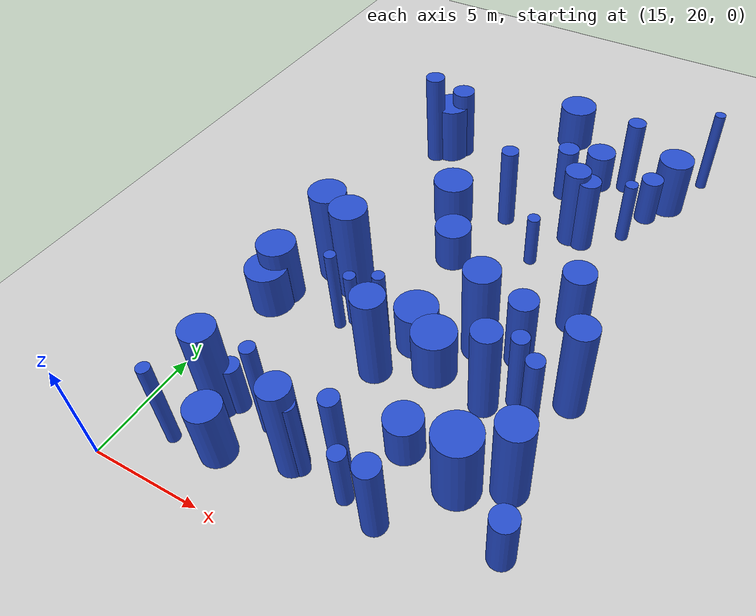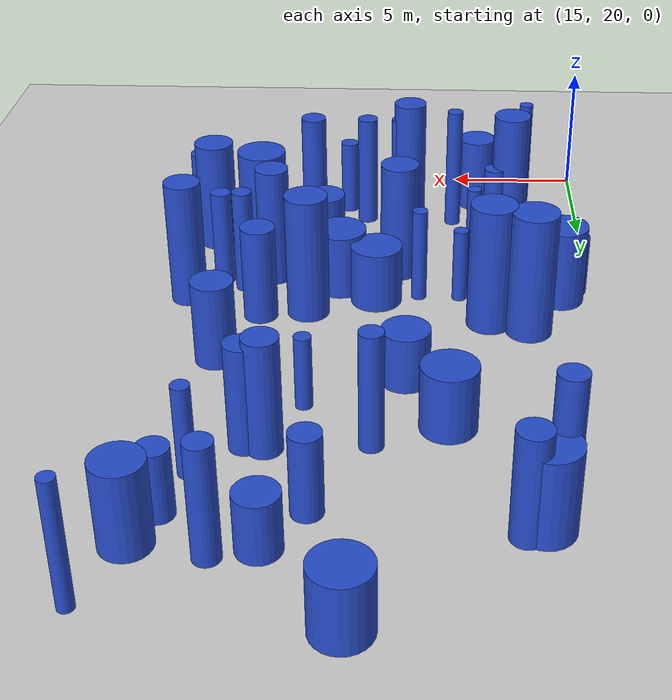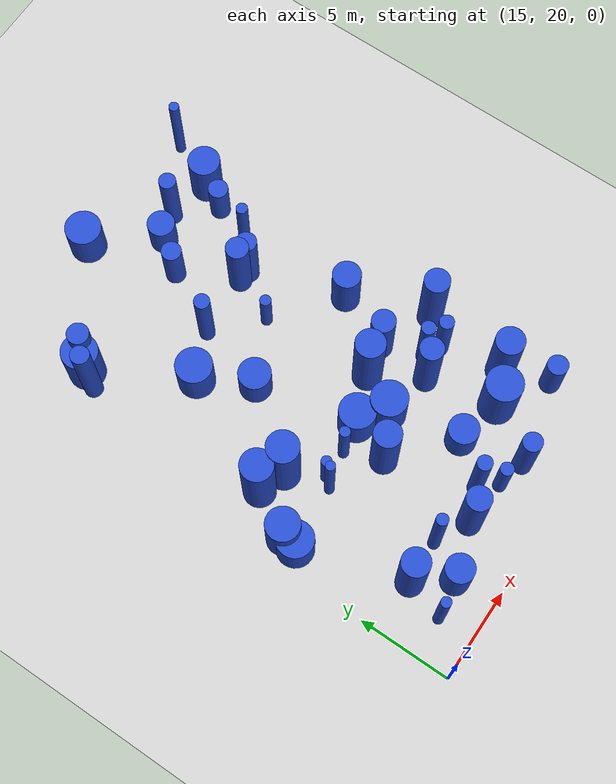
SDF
<sdf version="1.6">
 <world name="default">
  <model name="ground_plane">
   <static>1</static>
   <link name="link">
    <collision name="collision">
     <geometry><plane><normal>0 0 1</normal><size>100 100</size></plane></geometry>
     <surface><friction><ode><mu>100</mu><mu2>50</mu2></ode></friction></surface>
    </collision>
    <visual name="visual">
     <cast_shadows>0</cast_shadows>
     <geometry><plane><normal>0 0 1</normal><size>100 100</size></plane></geometry>
     <material>
      <script><uri>file://media/materials/scripts/gazebo.material</uri><name>Gazebo/Grey</name></script>
     </material>
    </visual>
   </link>
  </model>
  <model name="0">
   <static>0</static>
   <link name="link">
    <inertial>
     <mass>2</mass>
     <inertia><ixx>1.43734</ixx><ixy>0</ixy><ixz>0</ixz><iyy>1.43734</iyy><iyz>0</iyz><izz>0.944565</izz></inertia>
    </inertial>
    <collision name="collision">
     <geometry><cylinder><length>2.40632</length><radius>0.971888</radius></cylinder></geometry>
     <surface><contact><collide_without_contact>1</collide_without_contact></contact></surface>
    </collision>
    <visual name="visual">
     <geometry><cylinder><length>2.40632</length><radius>0.971888</radius></cylinder></geometry>
     <material>
      <script><uri>file://media/materials/scripts/gazebo.material</uri><name>Gazebo/Blue</name></script>
     </material>
    </visual>
    <gravity>0</gravity>
   </link>
   <pose>20.5384 38.7875 1.20316 0 -0 0</pose>
  </model>
  <model name="4">
   <static>0</static>
   <link name="link">
    <inertial>
     <mass>2</mass>
     <inertia>
      <ixx>2.26503</ixx>
      <ixy>0</ixy>
      <ixz>0</ixz>
      <iyy>2.26503</iyy>
      <iyz>0</iyz>
      <izz>0.0810352</izz>
     </inertia>
    </inertial>
    <collision name="collision">
     <geometry><cylinder><length>3.65337</length><radius>0.284667</radius></cylinder></geometry>
     <surface><contact><collide_without_contact>1</collide_without_contact></contact></surface>
    </collision>
    <visual name="visual">
     <geometry><cylinder><length>3.65337</length><radius>0.284667</radius></cylinder></geometry>
     <material>
      <script><uri>file://media/materials/scripts/gazebo.material</uri><name>Gazebo/Blue</name></script>
     </material>
    </visual>
    <gravity>0</gravity>
   </link>
   <pose>21.5602 30.4174 1.82668 0 -0 0</pose>
  </model>
  <model name="16">
   <static>0</static>
   <link name="link">
    <inertial>
     <mass>2</mass>
     <inertia><ixx>1.32738</ixx><ixy>0</ixy><ixz>0</ixz><iyy>1.32738</iyy><iyz>0</iyz><izz>0.945054</izz></inertia>
    </inertial>
    <collision name="collision">
     <geometry><cylinder><length>2.26476</length><radius>0.972139</radius></cylinder></geometry>
     <surface><contact><collide_without_contact>1</collide_without_contact></contact></surface>
    </collision>
    <visual name="visual">
     <geometry><cylinder><length>2.26476</length><radius>0.972139</radius></cylinder></geometry>
     <material>
      <script><uri>file://media/materials/scripts/gazebo.material</uri><name>Gazebo/Blue</name></script>
     </material>
    </visual>
    <gravity>0</gravity>
   </link>
   <pose>16.1139 29.627 1.13238 0 -0 0</pose>
  </model>
  <model name="21">
   <static>0</static>
   <link name="link">
    <inertial>
     <mass>2</mass>
     <inertia><ixx>1.37016</ixx><ixy>0</ixy><ixz>0</ixz><iyy>1.37016</iyy><iyz>0</iyz><izz>0.921566</izz></inertia>
    </inertial>
    <collision name="collision">
     <geometry><cylinder><length>2.33587</length><radius>0.959982</radius></cylinder></geometry>
     <surface><contact><collide_without_contact>1</collide_without_contact></contact></surface>
    </collision>
    <visual name="visual">
     <geometry><cylinder><length>2.33587</length><radius>0.959982</radius></cylinder></geometry>
     <material>
      <script><uri>file://media/materials/scripts/gazebo.material</uri><name>Gazebo/Blue</name></script>
     </material>
    </visual>
    <gravity>0</gravity>
   </link>
   <pose>23.4785 47.9749 1.16793 0 -0 0</pose>
  </model>
  <model name="25">
   <static>0</static>
   <link name="link">
    <inertial>
     <mass>2</mass>
     <inertia><ixx>1.51438</ixx><ixy>0</ixy><ixz>0</ixz><iyy>1.51438</iyy><iyz>0</iyz><izz>0.951451</izz></inertia>
    </inertial>
    <collision name="collision">
     <geometry><cylinder><length>2.49638</length><radius>0.975423</radius></cylinder></geometry>
     <surface><contact><collide_without_contact>1</collide_without_contact></contact></surface>
    </collision>
    <visual name="visual">
     <geometry><cylinder><length>2.49638</length><radius>0.975423</radius></cylinder></geometry>
     <material>
      <script><uri>file://media/materials/scripts/gazebo.material</uri><name>Gazebo/Blue</name></script>
     </material>
    </visual>
    <gravity>0</gravity>
   </link>
   <pose>24.5529 29.7279 1.24819 0 -0 0</pose>
  </model>
  <model name="35">
   <static>0</static>
   <link name="link">
    <inertial>
     <mass>2</mass>
     <inertia><ixx>2.06592</ixx><ixy>0</ixy><ixz>0</ixz><iyy>2.06592</iyy><iyz>0</iyz><izz>0.920991</izz></inertia>
    </inertial>
    <collision name="collision">
     <geometry><cylinder><length>3.10364</length><radius>0.959683</radius></cylinder></geometry>
     <surface><contact><collide_without_contact>1</collide_without_contact></contact></surface>
    </collision>
    <visual name="visual">
     <geometry><cylinder><length>3.10364</length><radius>0.959683</radius></cylinder></geometry>
     <material>
      <script><uri>file://media/materials/scripts/gazebo.material</uri><name>Gazebo/Blue</name></script>
     </material>
    </visual>
    <gravity>0</gravity>
   </link>
   <pose>17.7601 43.7207 1.55182 0 -0 0</pose>
  </model>
  <model name="55">
   <static>0</static>
   <link name="link">
    <inertial>
     <mass>2</mass>
     <inertia><ixx>4.17613</ixx><ixy>0</ixy><ixz>0</ixz><iyy>4.17613</iyy><iyz>0</iyz><izz>0.615115</izz></inertia>
    </inertial>
    <collision name="collision">
     <geometry><cylinder><length>4.81782</length><radius>0.784293</radius></cylinder></geometry>
     <surface><contact><collide_without_contact>1</collide_without_contact></contact></surface>
    </collision>
    <visual name="visual">
     <geometry><cylinder><length>4.81782</length><radius>0.784293</radius></cylinder></geometry>
     <material>
      <script><uri>file://media/materials/scripts/gazebo.material</uri><name>Gazebo/Blue</name></script>
     </material>
    </visual>
    <gravity>0</gravity>
   </link>
   <pose>25.66 31.6904 2.40891 0 -0 0</pose>
  </model>
  <model name="60">
   <static>0</static>
   <link name="link">
    <inertial>
     <mass>2</mass>
     <inertia>
      <ixx>3.31655</ixx>
      <ixy>0</ixy>
      <ixz>0</ixz>
      <iyy>3.31655</iyy>
      <iyz>0</iyz>
      <izz>0.0764342</izz>
     </inertia>
    </inertial>
    <collision name="collision">
     <geometry><cylinder><length>4.43509</length><radius>0.276467</radius></cylinder></geometry>
     <surface><contact><collide_without_contact>1</collide_without_contact></contact></surface>
    </collision>
    <visual name="visual">
     <geometry><cylinder><length>4.43509</length><radius>0.276467</radius></cylinder></geometry>
     <material>
      <script><uri>file://media/materials/scripts/gazebo.material</uri><name>Gazebo/Blue</name></script>
     </material>
    </visual>
    <gravity>0</gravity>
   </link>
   <pose>17.1664 21.937 2.21754 0 -0 0</pose>
  </model>
  <model name="63">
   <static>0</static>
   <link name="link">
    <inertial>
     <mass>2</mass>
     <inertia><ixx>2.80648</ixx><ixy>0</ixy><ixz>0</ixz><iyy>2.80648</iyy><iyz>0</iyz><izz>0.263558</izz></inertia>
    </inertial>
    <collision name="collision">
     <geometry><cylinder><length>4.00602</length><radius>0.513379</radius></cylinder></geometry>
     <surface><contact><collide_without_contact>1</collide_without_contact></contact></surface>
    </collision>
    <visual name="visual">
     <geometry><cylinder><length>4.00602</length><radius>0.513379</radius></cylinder></geometry>
     <material>
      <script><uri>file://media/materials/scripts/gazebo.material</uri><name>Gazebo/Blue</name></script>
     </material>
    </visual>
    <gravity>0</gravity>
   </link>
   <pose>26.0846 22.6359 2.00301 0 -0 0</pose>
  </model>
  <model name="64">
   <static>0</static>
   <link name="link">
    <inertial>
     <mass>2</mass>
     <inertia><ixx>2.8151</ixx><ixy>0</ixy><ixz>0</ixz><iyy>2.8151</iyy><iyz>0</iyz><izz>0.143102</izz></inertia>
    </inertial>
    <collision name="collision">
     <geometry><cylinder><length>4.05725</length><radius>0.378289</radius></cylinder></geometry>
     <surface><contact><collide_without_contact>1</collide_without_contact></contact></surface>
    </collision>
    <visual name="visual">
     <geometry><cylinder><length>4.05725</length><radius>0.378289</radius></cylinder></geometry>
     <material>
      <script><uri>file://media/materials/scripts/gazebo.material</uri><name>Gazebo/Blue</name></script>
     </material>
    </visual>
    <gravity>0</gravity>
   </link>
   <pose>28.212 29.9112 2.02863 0 -0 0</pose>
  </model>
  <model name="66">
   <static>0</static>
   <link name="link">
    <inertial>
     <mass>2</mass>
     <inertia><ixx>1.02189</ixx><ixy>0</ixy><ixz>0</ixz><iyy>1.02189</iyy><iyz>0</iyz><izz>0.655979</izz></inertia>
    </inertial>
    <collision name="collision">
     <geometry><cylinder><length>2.04044</length><radius>0.809925</radius></cylinder></geometry>
     <surface><contact><collide_without_contact>1</collide_without_contact></contact></surface>
    </collision>
    <visual name="visual">
     <geometry><cylinder><length>2.04044</length><radius>0.809925</radius></cylinder></geometry>
     <material>
      <script><uri>file://media/materials/scripts/gazebo.material</uri><name>Gazebo/Blue</name></script>
     </material>
    </visual>
    <gravity>0</gravity>
   </link>
   <pose>25.4223 25.8703 1.02022 0 -0 0</pose>
  </model>
  <model name="82">
   <static>0</static>
   <link name="link">
    <inertial>
     <mass>2</mass>
     <inertia><ixx>4.3118</ixx><ixy>0</ixy><ixz>0</ixz><iyy>4.3118</iyy><iyz>0</iyz><izz>0.716324</izz></inertia>
    </inertial>
    <collision name="collision">
     <geometry><cylinder><length>4.8705</length><radius>0.846359</radius></cylinder></geometry>
     <surface><contact><collide_without_contact>1</collide_without_contact></contact></surface>
    </collision>
    <visual name="visual">
     <geometry><cylinder><length>4.8705</length><radius>0.846359</radius></cylinder></geometry>
     <material>
      <script><uri>file://media/materials/scripts/gazebo.material</uri><name>Gazebo/Blue</name></script>
     </material>
    </visual>
    <gravity>0</gravity>
   </link>
   <pose>18.9631 32.2529 2.43525 0 -0 0</pose>
  </model>
  <model name="85">
   <static>0</static>
   <link name="link">
    <inertial>
     <mass>2</mass>
     <inertia>
      <ixx>1.86972</ixx>
      <ixy>0</ixy>
      <ixz>0</ixz>
      <iyy>1.86972</iyy>
      <iyz>0</iyz>
      <izz>0.0966798</izz>
     </inertia>
    </inertial>
    <collision name="collision">
     <geometry><cylinder><length>3.3058</length><radius>0.310934</radius></cylinder></geometry>
     <surface><contact><collide_without_contact>1</collide_without_contact></contact></surface>
    </collision>
    <visual name="visual">
     <geometry><cylinder><length>3.3058</length><radius>0.310934</radius></cylinder></geometry>
     <material>
      <script><uri>file://media/materials/scripts/gazebo.material</uri><name>Gazebo/Blue</name></script>
     </material>
    </visual>
    <gravity>0</gravity>
   </link>
   <pose>28.6384 41.4906 1.6529 0 -0 0</pose>
  </model>
  <model name="88">
   <static>0</static>
   <link name="link">
    <inertial>
     <mass>2</mass>
     <inertia><ixx>4.31393</ixx><ixy>0</ixy><ixz>0</ixz><iyy>4.31393</iyy><iyz>0</iyz><izz>0.417532</izz></inertia>
    </inertial>
    <collision name="collision">
     <geometry><cylinder><length>4.96296</length><radius>0.646167</radius></cylinder></geometry>
     <surface><contact><collide_without_contact>1</collide_without_contact></contact></surface>
    </collision>
    <visual name="visual">
     <geometry><cylinder><length>4.96296</length><radius>0.646167</radius></cylinder></geometry>
     <material>
      <script><uri>file://media/materials/scripts/gazebo.material</uri><name>Gazebo/Blue</name></script>
     </material>
    </visual>
    <gravity>0</gravity>
   </link>
   <pose>22.0212 23.2428 2.48148 0 -0 0</pose>
  </model>
  <model name="95">
   <static>0</static>
   <link name="link">
    <inertial>
     <mass>2</mass>
     <inertia><ixx>2.47451</ixx><ixy>0</ixy><ixz>0</ixz><iyy>2.47451</iyy><iyz>0</iyz><izz>0.401663</izz></inertia>
    </inertial>
    <collision name="collision">
     <geometry><cylinder><length>3.69352</length><radius>0.633769</radius></cylinder></geometry>
     <surface><contact><collide_without_contact>1</collide_without_contact></contact></surface>
    </collision>
    <visual name="visual">
     <geometry><cylinder><length>3.69352</length><radius>0.633769</radius></cylinder></geometry>
     <material>
      <script><uri>file://media/materials/scripts/gazebo.material</uri><name>Gazebo/Blue</name></script>
     </material>
    </visual>
    <gravity>0</gravity>
   </link>
   <pose>27.3993 32.0026 1.84676 0 -0 0</pose>
  </model>
  <model name="104">
   <static>0</static>
   <link name="link">
    <inertial>
     <mass>2</mass>
     <inertia>
      <ixx>3.16843</ixx>
      <ixy>0</ixy>
      <ixz>0</ixz>
      <iyy>3.16843</iyy>
      <iyz>0</iyz>
      <izz>0.0656022</izz>
     </inertia>
    </inertial>
    <collision name="collision">
     <geometry><cylinder><length>4.33748</length><radius>0.256129</radius></cylinder></geometry>
     <surface><contact><collide_without_contact>1</collide_without_contact></contact></surface>
    </collision>
    <visual name="visual">
     <geometry><cylinder><length>4.33748</length><radius>0.256129</radius></cylinder></geometry>
     <material>
      <script><uri>file://media/materials/scripts/gazebo.material</uri><name>Gazebo/Blue</name></script>
     </material>
    </visual>
    <gravity>0</gravity>
   </link>
   <pose>19.5779 29.9421 2.16874 0 -0 0</pose>
  </model>
  <model name="106">
   <static>0</static>
   <link name="link">
    <inertial>
     <mass>2</mass>
     <inertia>
      <ixx>0.993795</ixx>
      <ixy>0</ixy>
      <ixz>0</ixz>
      <iyy>0.993795</iyy>
      <iyz>0</iyz>
      <izz>0.535532</izz>
     </inertia>
    </inertial>
    <collision name="collision">
     <geometry><cylinder><length>2.08715</length><radius>0.7318</radius></cylinder></geometry>
     <surface><contact><collide_without_contact>1</collide_without_contact></contact></surface>
    </collision>
    <visual name="visual">
     <geometry><cylinder><length>2.08715</length><radius>0.7318</radius></cylinder></geometry>
     <material>
      <script><uri>file://media/materials/scripts/gazebo.material</uri><name>Gazebo/Blue</name></script>
     </material>
    </visual>
    <gravity>0</gravity>
   </link>
   <pose>26.0287 44.8688 1.04357 0 -0 0</pose>
  </model>
  <model name="108">
   <static>0</static>
   <link name="link">
    <inertial>
     <mass>2</mass>
     <inertia>
      <ixx>1.28147</ixx>
      <ixy>0</ixy>
      <ixz>0</ixz>
      <iyy>1.28147</iyy>
      <iyz>0</iyz>
      <izz>0.0907902</izz>
     </inertia>
    </inertial>
    <collision name="collision">
     <geometry><cylinder><length>2.72332</length><radius>0.301314</radius></cylinder></geometry>
     <surface><contact><collide_without_contact>1</collide_without_contact></contact></surface>
    </collision>
    <visual name="visual">
     <geometry><cylinder><length>2.72332</length><radius>0.301314</radius></cylinder></geometry>
     <material>
      <script><uri>file://media/materials/scripts/gazebo.material</uri><name>Gazebo/Blue</name></script>
     </material>
    </visual>
    <gravity>0</gravity>
   </link>
   <pose>25.325 37.7395 1.36166 0 -0 0</pose>
  </model>
  <model name="113">
   <static>0</static>
   <link name="link">
    <inertial>
     <mass>2</mass>
     <inertia><ixx>1.81638</ixx><ixy>0</ixy><ixz>0</ixz><iyy>1.81638</iyy><iyz>0</iyz><izz>0.565945</izz></inertia>
    </inertial>
    <collision name="collision">
     <geometry><cylinder><length>3.03323</length><radius>0.752293</radius></cylinder></geometry>
     <surface><contact><collide_without_contact>1</collide_without_contact></contact></surface>
    </collision>
    <visual name="visual">
     <geometry><cylinder><length>3.03323</length><radius>0.752293</radius></cylinder></geometry>
     <material>
      <script><uri>file://media/materials/scripts/gazebo.material</uri><name>Gazebo/Blue</name></script>
     </material>
    </visual>
    <gravity>0</gravity>
   </link>
   <pose>19.179 22.2746 1.51661 0 -0 0</pose>
  </model>
  <model name="114">
   <static>0</static>
   <link name="link">
    <inertial>
     <mass>2</mass>
     <inertia><ixx>1.57724</ixx><ixy>0</ixy><ixz>0</ixz><iyy>1.57724</iyy><iyz>0</iyz><izz>0.280383</izz></inertia>
    </inertial>
    <collision name="collision">
     <geometry><cylinder><length>2.93637</length><radius>0.529512</radius></cylinder></geometry>
     <surface><contact><collide_without_contact>1</collide_without_contact></contact></surface>
    </collision>
    <visual name="visual">
     <geometry><cylinder><length>2.93637</length><radius>0.529512</radius></cylinder></geometry>
     <material>
      <script><uri>file://media/materials/scripts/gazebo.material</uri><name>Gazebo/Blue</name></script>
     </material>
    </visual>
    <gravity>0</gravity>
   </link>
   <pose>24.7838 43.2077 1.46819 0 -0 0</pose>
  </model>
  <model name="116">
   <static>0</static>
   <link name="link">
    <inertial>
     <mass>2</mass>
     <inertia><ixx>1.62756</ixx><ixy>0</ixy><ixz>0</ixz><iyy>1.62756</iyy><iyz>0</iyz><izz>0.125947</izz></inertia>
    </inertial>
    <collision name="collision">
     <geometry><cylinder><length>3.06391</length><radius>0.35489</radius></cylinder></geometry>
     <surface><contact><collide_without_contact>1</collide_without_contact></contact></surface>
    </collision>
    <visual name="visual">
     <geometry><cylinder><length>3.06391</length><radius>0.35489</radius></cylinder></geometry>
     <material>
      <script><uri>file://media/materials/scripts/gazebo.material</uri><name>Gazebo/Blue</name></script>
     </material>
    </visual>
    <gravity>0</gravity>
   </link>
   <pose>24.5472 22.9949 1.53196 0 -0 0</pose>
  </model>
  <model name="123">
   <static>0</static>
   <link name="link">
    <inertial>
     <mass>2</mass>
     <inertia><ixx>1.32575</ixx><ixy>0</ixy><ixz>0</ixz><iyy>1.32575</iyy><iyz>0</iyz><izz>0.100826</izz></inertia>
    </inertial>
    <collision name="collision">
     <geometry><cylinder><length>2.76623</length><radius>0.317531</radius></cylinder></geometry>
     <surface><contact><collide_without_contact>1</collide_without_contact></contact></surface>
    </collision>
    <visual name="visual">
     <geometry><cylinder><length>2.76623</length><radius>0.317531</radius></cylinder></geometry>
     <material>
      <script><uri>file://media/materials/scripts/gazebo.material</uri><name>Gazebo/Blue</name></script>
     </material>
    </visual>
    <gravity>0</gravity>
   </link>
   <pose>30.0622 44.5417 1.38311 0 -0 0</pose>
  </model>
  <model name="130">
   <static>0</static>
   <link name="link">
    <inertial>
     <mass>2</mass>
     <inertia><ixx>1.91312</ixx><ixy>0</ixy><ixz>0</ixz><iyy>1.91312</iyy><iyz>0</iyz><izz>0.722179</izz></inertia>
    </inertial>
    <collision name="collision">
     <geometry><cylinder><length>3.05159</length><radius>0.849811</radius></cylinder></geometry>
     <surface><contact><collide_without_contact>1</collide_without_contact></contact></surface>
    </collision>
    <visual name="visual">
     <geometry><cylinder><length>3.05159</length><radius>0.849811</radius></cylinder></geometry>
     <material>
      <script><uri>file://media/materials/scripts/gazebo.material</uri><name>Gazebo/Blue</name></script>
     </material>
    </visual>
    <gravity>0</gravity>
   </link>
   <pose>29.8732 44.7938 1.52579 0 -0 0</pose>
  </model>
  <model name="133">
   <static>0</static>
   <link name="link">
    <inertial>
     <mass>2</mass>
     <inertia><ixx>4.12807</ixx><ixy>0</ixy><ixz>0</ixz><iyy>4.12807</iyy><iyz>0</iyz><izz>0.452345</izz></inertia>
    </inertial>
    <collision name="collision">
     <geometry><cylinder><length>4.83853</length><radius>0.672566</radius></cylinder></geometry>
     <surface><contact><collide_without_contact>1</collide_without_contact></contact></surface>
    </collision>
    <visual name="visual">
     <geometry><cylinder><length>4.83853</length><radius>0.672566</radius></cylinder></geometry>
     <material>
      <script><uri>file://media/materials/scripts/gazebo.material</uri><name>Gazebo/Blue</name></script>
     </material>
    </visual>
    <gravity>0</gravity>
   </link>
   <pose>30.2526 30.7888 2.41927 0 -0 0</pose>
  </model>
  <model name="137">
   <static>0</static>
   <link name="link">
    <inertial>
     <mass>2</mass>
     <inertia><ixx>1.36924</ixx><ixy>0</ixy><ixz>0</ixz><iyy>1.36924</iyy><iyz>0</iyz><izz>0.930817</izz></inertia>
    </inertial>
    <collision name="collision">
     <geometry><cylinder><length>2.32873</length><radius>0.964788</radius></cylinder></geometry>
     <surface><contact><collide_without_contact>1</collide_without_contact></contact></surface>
    </collision>
    <visual name="visual">
     <geometry><cylinder><length>2.32873</length><radius>0.964788</radius></cylinder></geometry>
     <material>
      <script><uri>file://media/materials/scripts/gazebo.material</uri><name>Gazebo/Blue</name></script>
     </material>
    </visual>
    <gravity>0</gravity>
   </link>
   <pose>23.1649 30.7007 1.16436 0 -0 0</pose>
  </model>
  <model name="146">
   <static>0</static>
   <link name="link">
    <inertial>
     <mass>2</mass>
     <inertia><ixx>1.08759</ixx><ixy>0</ixy><ixz>0</ixz><iyy>1.08759</iyy><iyz>0</iyz><izz>0.739823</izz></inertia>
    </inertial>
    <collision name="collision">
     <geometry><cylinder><length>2.07511</length><radius>0.86013</radius></cylinder></geometry>
     <surface><contact><collide_without_contact>1</collide_without_contact></contact></surface>
    </collision>
    <visual name="visual">
     <geometry><cylinder><length>2.07511</length><radius>0.86013</radius></cylinder></geometry>
     <material>
      <script><uri>file://media/materials/scripts/gazebo.material</uri><name>Gazebo/Blue</name></script>
     </material>
    </visual>
    <gravity>0</gravity>
   </link>
   <pose>21.9815 36.1023 1.03756 0 -0 0</pose>
  </model>
  <model name="149">
   <static>0</static>
   <link name="link">
    <inertial>
     <mass>2</mass>
     <inertia><ixx>1.45954</ixx><ixy>0</ixy><ixz>0</ixz><iyy>1.45954</iyy><iyz>0</iyz><izz>0.299824</izz></inertia>
    </inertial>
    <collision name="collision">
     <geometry><cylinder><length>2.80317</length><radius>0.547562</radius></cylinder></geometry>
     <surface><contact><collide_without_contact>1</collide_without_contact></contact></surface>
    </collision>
    <visual name="visual">
     <geometry><cylinder><length>2.80317</length><radius>0.547562</radius></cylinder></geometry>
     <material>
      <script><uri>file://media/materials/scripts/gazebo.material</uri><name>Gazebo/Blue</name></script>
     </material>
    </visual>
    <gravity>0</gravity>
   </link>
   <pose>30.6104 23.7122 1.40159 0 -0 0</pose>
  </model>
  <model name="159">
   <static>0</static>
   <link name="link">
    <inertial>
     <mass>2</mass>
     <inertia><ixx>2.43882</ixx><ixy>0</ixy><ixz>0</ixz><iyy>2.43882</iyy><iyz>0</iyz><izz>0.1512</izz></inertia>
    </inertial>
    <collision name="collision">
     <geometry><cylinder><length>3.76554</length><radius>0.388845</radius></cylinder></geometry>
     <surface><contact><collide_without_contact>1</collide_without_contact></contact></surface>
    </collision>
    <visual name="visual">
     <geometry><cylinder><length>3.76554</length><radius>0.388845</radius></cylinder></geometry>
     <material>
      <script><uri>file://media/materials/scripts/gazebo.material</uri><name>Gazebo/Blue</name></script>
     </material>
    </visual>
    <gravity>0</gravity>
   </link>
   <pose>29.0799 29.3754 1.88277 0 -0 0</pose>
  </model>
  <model name="164">
   <static>0</static>
   <link name="link">
    <inertial>
     <mass>2</mass>
     <inertia>
      <ixx>4.18831</ixx>
      <ixy>0</ixy>
      <ixz>0</ixz>
      <iyy>4.18831</iyy>
      <iyz>0</iyz>
      <izz>0.0988165</izz>
     </inertia>
    </inertial>
    <collision name="collision">
     <geometry><cylinder><length>4.98331</length><radius>0.314351</radius></cylinder></geometry>
     <surface><contact><collide_without_contact>1</collide_without_contact></contact></surface>
    </collision>
    <visual name="visual">
     <geometry><cylinder><length>4.98331</length><radius>0.314351</radius></cylinder></geometry>
     <material>
      <script><uri>file://media/materials/scripts/gazebo.material</uri><name>Gazebo/Blue</name></script>
     </material>
    </visual>
    <gravity>0</gravity>
   </link>
   <pose>20.1959 24.1287 2.49166 0 -0 0</pose>
  </model>
  <model name="167">
   <static>0</static>
   <link name="link">
    <inertial>
     <mass>2</mass>
     <inertia><ixx>3.48287</ixx><ixy>0</ixy><ixz>0</ixz><iyy>3.48287</iyy><iyz>0</iyz><izz>0.574852</izz></inertia>
    </inertial>
    <collision name="collision">
     <geometry><cylinder><length>4.37866</length><radius>0.75819</radius></cylinder></geometry>
     <surface><contact><collide_without_contact>1</collide_without_contact></contact></surface>
    </collision>
    <visual name="visual">
     <geometry><cylinder><length>4.37866</length><radius>0.75819</radius></cylinder></geometry>
     <material>
      <script><uri>file://media/materials/scripts/gazebo.material</uri><name>Gazebo/Blue</name></script>
     </material>
    </visual>
    <gravity>0</gravity>
   </link>
   <pose>29.7614 26.1951 2.18933 0 -0 0</pose>
  </model>
  <model name="170">
   <static>0</static>
   <link name="link">
    <inertial>
     <mass>2</mass>
     <inertia><ixx>1.02657</ixx><ixy>0</ixy><ixz>0</ixz><iyy>1.02657</iyy><iyz>0</iyz><izz>0.183849</izz></inertia>
    </inertial>
    <collision name="collision">
     <geometry><cylinder><length>2.36809</length><radius>0.428776</radius></cylinder></geometry>
     <surface><contact><collide_without_contact>1</collide_without_contact></contact></surface>
    </collision>
    <visual name="visual">
     <geometry><cylinder><length>2.36809</length><radius>0.428776</radius></cylinder></geometry>
     <material>
      <script><uri>file://media/materials/scripts/gazebo.material</uri><name>Gazebo/Blue</name></script>
     </material>
    </visual>
    <gravity>0</gravity>
   </link>
   <pose>17.7544 32.4735 1.18405 0 -0 0</pose>
  </model>
  <model name="172">
   <static>0</static>
   <link name="link">
    <inertial>
     <mass>2</mass>
     <inertia>
      <ixx>1.41675</ixx>
      <ixy>0</ixy>
      <ixz>0</ixz>
      <iyy>1.41675</iyy>
      <iyz>0</iyz>
      <izz>0.0784457</izz>
     </inertia>
    </inertial>
    <collision name="collision">
     <geometry><cylinder><length>2.87492</length><radius>0.280082</radius></cylinder></geometry>
     <surface><contact><collide_without_contact>1</collide_without_contact></contact></surface>
    </collision>
    <visual name="visual">
     <geometry><cylinder><length>2.87492</length><radius>0.280082</radius></cylinder></geometry>
     <material>
      <script><uri>file://media/materials/scripts/gazebo.material</uri><name>Gazebo/Blue</name></script>
     </material>
    </visual>
    <gravity>0</gravity>
   </link>
   <pose>20.0262 30.4477 1.43746 0 -0 0</pose>
  </model>
  <model name="175">
   <static>0</static>
   <link name="link">
    <inertial>
     <mass>2</mass>
     <inertia><ixx>3.17287</ixx><ixy>0</ixy><ixz>0</ixz><iyy>3.17287</iyy><iyz>0</iyz><izz>0.172019</izz></inertia>
    </inertial>
    <collision name="collision">
     <geometry><cylinder><length>4.30362</length><radius>0.414752</radius></cylinder></geometry>
     <surface><contact><collide_without_contact>1</collide_without_contact></contact></surface>
    </collision>
    <visual name="visual">
     <geometry><cylinder><length>4.30362</length><radius>0.414752</radius></cylinder></geometry>
     <material>
      <script><uri>file://media/materials/scripts/gazebo.material</uri><name>Gazebo/Blue</name></script>
     </material>
    </visual>
    <gravity>0</gravity>
   </link>
   <pose>23.0002 39.8961 2.15181 0 -0 0</pose>
  </model>
  <model name="180">
   <static>0</static>
   <link name="link">
    <inertial>
     <mass>2</mass>
     <inertia><ixx>4.12682</ixx><ixy>0</ixy><ixz>0</ixz><iyy>4.12682</iyy><iyz>0</iyz><izz>0.535388</izz></inertia>
    </inertial>
    <collision name="collision">
     <geometry><cylinder><length>4.81194</length><radius>0.731702</radius></cylinder></geometry>
     <surface><contact><collide_without_contact>1</collide_without_contact></contact></surface>
    </collision>
    <visual name="visual">
     <geometry><cylinder><length>4.81194</length><radius>0.731702</radius></cylinder></geometry>
     <material>
      <script><uri>file://media/materials/scripts/gazebo.material</uri><name>Gazebo/Blue</name></script>
     </material>
    </visual>
    <gravity>0</gravity>
   </link>
   <pose>17.8674 24.054 2.40597 0 -0 0</pose>
  </model>
  <model name="186">
   <static>0</static>
   <link name="link">
    <inertial>
     <mass>2</mass>
     <inertia><ixx>3.12612</ixx><ixy>0</ixy><ixz>0</ixz><iyy>3.12612</iyy><iyz>0</iyz><izz>0.367163</izz></inertia>
    </inertial>
    <collision name="collision">
     <geometry><cylinder><length>4.20181</length><radius>0.60594</radius></cylinder></geometry>
     <surface><contact><collide_without_contact>1</collide_without_contact></contact></surface>
    </collision>
    <visual name="visual">
     <geometry><cylinder><length>4.20181</length><radius>0.60594</radius></cylinder></geometry>
     <material>
      <script><uri>file://media/materials/scripts/gazebo.material</uri><name>Gazebo/Blue</name></script>
     </material>
    </visual>
    <gravity>0</gravity>
   </link>
   <pose>26.3735 40.1477 2.10091 0 -0 0</pose>
  </model>
  <model name="187">
   <static>0</static>
   <link name="link">
    <inertial>
     <mass>2</mass>
     <inertia><ixx>2.01351</ixx><ixy>0</ixy><ixz>0</ixz><iyy>2.01351</iyy><iyz>0</iyz><izz>0.791841</izz></inertia>
    </inertial>
    <collision name="collision">
     <geometry><cylinder><length>3.11537</length><radius>0.889855</radius></cylinder></geometry>
     <surface><contact><collide_without_contact>1</collide_without_contact></contact></surface>
    </collision>
    <visual name="visual">
     <geometry><cylinder><length>3.11537</length><radius>0.889855</radius></cylinder></geometry>
     <material>
      <script><uri>file://media/materials/scripts/gazebo.material</uri><name>Gazebo/Blue</name></script>
     </material>
    </visual>
    <gravity>0</gravity>
   </link>
   <pose>16.2188 30.4013 1.55769 0 -0 0</pose>
  </model>
  <model name="190">
   <static>0</static>
   <link name="link">
    <inertial>
     <mass>2</mass>
     <inertia><ixx>2.68984</ixx><ixy>0</ixy><ixz>0</ixz><iyy>2.68984</iyy><iyz>0</iyz><izz>0.935713</izz></inertia>
    </inertial>
    <collision name="collision">
     <geometry><cylinder><length>3.65129</length><radius>0.967323</radius></cylinder></geometry>
     <surface><contact><collide_without_contact>1</collide_without_contact></contact></surface>
    </collision>
    <visual name="visual">
     <geometry><cylinder><length>3.65129</length><radius>0.967323</radius></cylinder></geometry>
     <material>
      <script><uri>file://media/materials/scripts/gazebo.material</uri><name>Gazebo/Blue</name></script>
     </material>
    </visual>
    <gravity>0</gravity>
   </link>
   <pose>27.9962 25.325 1.82564 0 -0 0</pose>
  </model>
  <model name="193">
   <static>0</static>
   <link name="link">
    <inertial>
     <mass>2</mass>
     <inertia><ixx>2.65089</ixx><ixy>0</ixy><ixz>0</ixz><iyy>2.65089</iyy><iyz>0</iyz><izz>0.332017</izz></inertia>
    </inertial>
    <collision name="collision">
     <geometry><cylinder><length>3.86126</length><radius>0.576209</radius></cylinder></geometry>
     <surface><contact><collide_without_contact>1</collide_without_contact></contact></surface>
    </collision>
    <visual name="visual">
     <geometry><cylinder><length>3.86126</length><radius>0.576209</radius></cylinder></geometry>
     <material>
      <script><uri>file://media/materials/scripts/gazebo.material</uri><name>Gazebo/Blue</name></script>
     </material>
    </visual>
    <gravity>0</gravity>
   </link>
   <pose>18.3004 44.0764 1.93063 0 -0 0</pose>
  </model>
  <model name="199">
   <static>0</static>
   <link name="link">
    <inertial>
     <mass>2</mass>
     <inertia><ixx>1.16728</ixx><ixy>0</ixy><ixz>0</ixz><iyy>1.16728</iyy><iyz>0</iyz><izz>0.28283</izz></inertia>
    </inertial>
    <collision name="collision">
     <geometry><cylinder><length>2.48097</length><radius>0.531818</radius></cylinder></geometry>
     <surface><contact><collide_without_contact>1</collide_without_contact></contact></surface>
    </collision>
    <visual name="visual">
     <geometry><cylinder><length>2.48097</length><radius>0.531818</radius></cylinder></geometry>
     <material>
      <script><uri>file://media/materials/scripts/gazebo.material</uri><name>Gazebo/Blue</name></script>
     </material>
    </visual>
    <gravity>0</gravity>
   </link>
   <pose>29.1826 43.4357 1.24049 0 -0 0</pose>
  </model>
  <model name="200">
   <static>0</static>
   <link name="link">
    <inertial>
     <mass>2</mass>
     <inertia><ixx>3.54077</ixx><ixy>0</ixy><ixz>0</ixz><iyy>3.54077</iyy><iyz>0</iyz><izz>0.159574</izz></inertia>
    </inertial>
    <collision name="collision">
     <geometry><cylinder><length>4.55696</length><radius>0.399468</radius></cylinder></geometry>
     <surface><contact><collide_without_contact>1</collide_without_contact></contact></surface>
    </collision>
    <visual name="visual">
     <geometry><cylinder><length>4.55696</length><radius>0.399468</radius></cylinder></geometry>
     <material>
      <script><uri>file://media/materials/scripts/gazebo.material</uri><name>Gazebo/Blue</name></script>
     </material>
    </visual>
    <gravity>0</gravity>
   </link>
   <pose>23.746 23.9561 2.27848 0 -0 0</pose>
  </model>
  <model name="201">
   <static>0</static>
   <link name="link">
    <inertial>
     <mass>2</mass>
     <inertia><ixx>2.68649</ixx><ixy>0</ixy><ixz>0</ixz><iyy>2.68649</iyy><iyz>0</iyz><izz>0.295944</izz></inertia>
    </inertial>
    <collision name="collision">
     <geometry><cylinder><length>3.90271</length><radius>0.544008</radius></cylinder></geometry>
     <surface><contact><collide_without_contact>1</collide_without_contact></contact></surface>
    </collision>
    <visual name="visual">
     <geometry><cylinder><length>3.90271</length><radius>0.544008</radius></cylinder></geometry>
     <material>
      <script><uri>file://media/materials/scripts/gazebo.material</uri><name>Gazebo/Blue</name></script>
     </material>
    </visual>
    <gravity>0</gravity>
   </link>
   <pose>27.0133 40.0464 1.95135 0 -0 0</pose>
  </model>
  <model name="207">
   <static>0</static>
   <link name="link">
    <inertial>
     <mass>2</mass>
     <inertia><ixx>2.90928</ixx><ixy>0</ixy><ixz>0</ixz><iyy>2.90928</iyy><iyz>0</iyz><izz>0.20415</izz></inertia>
    </inertial>
    <collision name="collision">
     <geometry><cylinder><length>4.10405</length><radius>0.451829</radius></cylinder></geometry>
     <surface><contact><collide_without_contact>1</collide_without_contact></contact></surface>
    </collision>
    <visual name="visual">
     <geometry><cylinder><length>4.10405</length><radius>0.451829</radius></cylinder></geometry>
     <material>
      <script><uri>file://media/materials/scripts/gazebo.material</uri><name>Gazebo/Blue</name></script>
     </material>
    </visual>
    <gravity>0</gravity>
   </link>
   <pose>27.4689 45.2796 2.05203 0 -0 0</pose>
  </model>
  <model name="211">
   <static>0</static>
   <link name="link">
    <inertial>
     <mass>2</mass>
     <inertia><ixx>3.81856</ixx><ixy>0</ixy><ixz>0</ixz><iyy>3.81856</iyy><iyz>0</iyz><izz>0.395372</izz></inertia>
    </inertial>
    <collision name="collision">
     <geometry><cylinder><length>4.66103</length><radius>0.628786</radius></cylinder></geometry>
     <surface><contact><collide_without_contact>1</collide_without_contact></contact></surface>
    </collision>
    <visual name="visual">
     <geometry><cylinder><length>4.66103</length><radius>0.628786</radius></cylinder></geometry>
     <material>
      <script><uri>file://media/materials/scripts/gazebo.material</uri><name>Gazebo/Blue</name></script>
     </material>
    </visual>
    <gravity>0</gravity>
   </link>
   <pose>27.1622 29.1034 2.33052 0 -0 0</pose>
  </model>
  <model name="214">
   <static>0</static>
   <link name="link">
    <inertial>
     <mass>2</mass>
     <inertia><ixx>3.04391</ixx><ixy>0</ixy><ixz>0</ixz><iyy>3.04391</iyy><iyz>0</iyz><izz>0.129529</izz></inertia>
    </inertial>
    <collision name="collision">
     <geometry><cylinder><length>4.22787</length><radius>0.359902</radius></cylinder></geometry>
     <surface><contact><collide_without_contact>1</collide_without_contact></contact></surface>
    </collision>
    <visual name="visual">
     <geometry><cylinder><length>4.22787</length><radius>0.359902</radius></cylinder></geometry>
     <material>
      <script><uri>file://media/materials/scripts/gazebo.material</uri><name>Gazebo/Blue</name></script>
     </material>
    </visual>
    <gravity>0</gravity>
   </link>
   <pose>22.4227 23.2098 2.11393 0 -0 0</pose>
  </model>
  <model name="216">
   <static>0</static>
   <link name="link">
    <inertial>
     <mass>2</mass>
     <inertia><ixx>3.3517</ixx><ixy>0</ixy><ixz>0</ixz><iyy>3.3517</iyy><iyz>0</iyz><izz>0.0718464</izz></inertia>
    </inertial>
    <collision name="collision">
     <geometry><cylinder><length>4.46034</length><radius>0.268042</radius></cylinder></geometry>
     <surface><contact><collide_without_contact>1</collide_without_contact></contact></surface>
    </collision>
    <visual name="visual">
     <geometry><cylinder><length>4.46034</length><radius>0.268042</radius></cylinder></geometry>
     <material>
      <script><uri>file://media/materials/scripts/gazebo.material</uri><name>Gazebo/Blue</name></script>
     </material>
    </visual>
    <gravity>0</gravity>
   </link>
   <pose>30.9934 47.3868 2.23017 0 -0 0</pose>
  </model>
  <model name="217">
   <static>0</static>
   <link name="link">
    <inertial>
     <mass>2</mass>
     <inertia><ixx>3.83964</ixx><ixy>0</ixy><ixz>0</ixz><iyy>3.83964</iyy><iyz>0</iyz><izz>0.525339</izz></inertia>
    </inertial>
    <collision name="collision">
     <geometry><cylinder><length>4.63269</length><radius>0.724803</radius></cylinder></geometry>
     <surface><contact><collide_without_contact>1</collide_without_contact></contact></surface>
    </collision>
    <visual name="visual">
     <geometry><cylinder><length>4.63269</length><radius>0.724803</radius></cylinder></geometry>
     <material>
      <script><uri>file://media/materials/scripts/gazebo.material</uri><name>Gazebo/Blue</name></script>
     </material>
    </visual>
    <gravity>0</gravity>
   </link>
   <pose>22.3496 28.5182 2.31634 0 -0 0</pose>
  </model>
  <model name="240">
   <static>0</static>
   <link name="link">
    <inertial>
     <mass>2</mass>
     <inertia><ixx>1.95595</ixx><ixy>0</ixy><ixz>0</ixz><iyy>1.95595</iyy><iyz>0</iyz><izz>0.562265</izz></inertia>
    </inertial>
    <collision name="collision">
     <geometry><cylinder><length>3.17</length><radius>0.749843</radius></cylinder></geometry>
     <surface><contact><collide_without_contact>1</collide_without_contact></contact></surface>
    </collision>
    <visual name="visual">
     <geometry><cylinder><length>3.17</length><radius>0.749843</radius></cylinder></geometry>
     <material>
      <script><uri>file://media/materials/scripts/gazebo.material</uri><name>Gazebo/Blue</name></script>
     </material>
    </visual>
    <gravity>0</gravity>
   </link>
   <pose>28.6471 35.0172 1.585 0 -0 0</pose>
  </model>
  <model name="243">
   <static>0</static>
   <link name="link">
    <inertial>
     <mass>2</mass>
     <inertia><ixx>4.2741</ixx><ixy>0</ixy><ixz>0</ixz><iyy>4.2741</iyy><iyz>0</iyz><izz>0.240077</izz></inertia>
    </inertial>
    <collision name="collision">
     <geometry><cylinder><length>4.99243</length><radius>0.489977</radius></cylinder></geometry>
     <surface><contact><collide_without_contact>1</collide_without_contact></contact></surface>
    </collision>
    <visual name="visual">
     <geometry><cylinder><length>4.99243</length><radius>0.489977</radius></cylinder></geometry>
     <material>
      <script><uri>file://media/materials/scripts/gazebo.material</uri><name>Gazebo/Blue</name></script>
     </material>
    </visual>
    <gravity>0</gravity>
   </link>
   <pose>17.2259 42.9222 2.49622 0 -0 0</pose>
  </model>
  <model name="247">
   <static>0</static>
   <link name="link">
    <inertial>
     <mass>2</mass>
     <inertia><ixx>4.27196</ixx><ixy>0</ixy><ixz>0</ixz><iyy>4.27196</iyy><iyz>0</iyz><izz>0.723791</izz></inertia>
    </inertial>
    <collision name="collision">
     <geometry><cylinder><length>4.84359</length><radius>0.850759</radius></cylinder></geometry>
     <surface><contact><collide_without_contact>1</collide_without_contact></contact></surface>
    </collision>
    <visual name="visual">
     <geometry><cylinder><length>4.84359</length><radius>0.850759</radius></cylinder></geometry>
     <material>
      <script><uri>file://media/materials/scripts/gazebo.material</uri><name>Gazebo/Blue</name></script>
     </material>
    </visual>
    <gravity>0</gravity>
   </link>
   <pose>17.5417 32.7599 2.4218 0 -0 0</pose>
  </model>
  <model name="249">
   <static>0</static>
   <link name="link">
    <inertial>
     <mass>2</mass>
     <inertia><ixx>1.23712</ixx><ixy>0</ixy><ixz>0</ixz><iyy>1.23712</iyy><iyz>0</iyz><izz>0.195861</izz></inertia>
    </inertial>
    <collision name="collision">
     <geometry><cylinder><length>2.61441</length><radius>0.442562</radius></cylinder></geometry>
     <surface><contact><collide_without_contact>1</collide_without_contact></contact></surface>
    </collision>
    <visual name="visual">
     <geometry><cylinder><length>2.61441</length><radius>0.442562</radius></cylinder></geometry>
     <material>
      <script><uri>file://media/materials/scripts/gazebo.material</uri><name>Gazebo/Blue</name></script>
     </material>
    </visual>
    <gravity>0</gravity>
   </link>
   <pose>18.489 24.402 1.30721 0 -0 0</pose>
  </model>
 </world>
</sdf>
